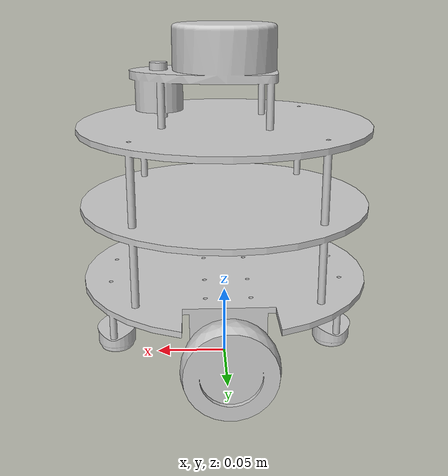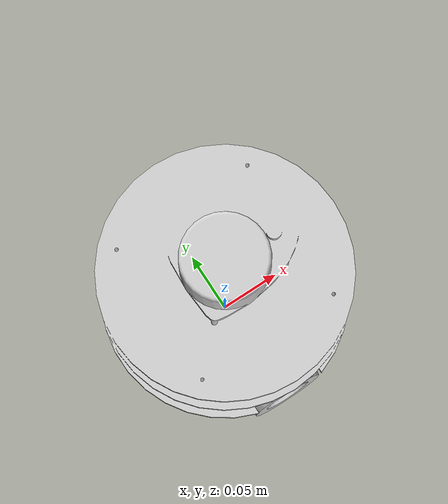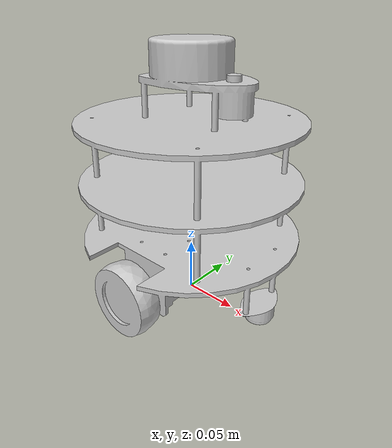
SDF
<?xml version="1.0" ?>
<sdf version="1.4">
    <model name="robot_thesis">
        <static>false</static>
        <link name="robot_base">
            <inertial>
                <pose>0 0 .1025 0 0 0</pose>
                <inertia>
                    <ixx>0.001</ixx>
                    <ixy>0.000</ixy>
                    <ixz>0.000</ixz>
                    <iyy>0.001</iyy>
                    <iyz>0.000</iyz>
                    <izz>0.001</izz>
                </inertia>
                <mass>1.0</mass>
            </inertial>
            <collision name="collision">
                <pose>0 0 .1025 0 0 0</pose>
                <geometry>
                    <box>
                        <size>.2 .2 .14</size>
                    </box>
                </geometry>
            </collision>
            <visual name="visual">
                <pose>0 0 .0625 0 0 -1.5707</pose>
                <geometry>
                    <mesh>
                        <uri>model://robot_thesis/meshs/dae/robot_base.dae</uri>
                    </mesh>
                </geometry>
            </visual>
            <collision name="caster_front_collision">
                <pose>-0.06 0 0.0325 0 0 0</pose>
                <geometry>
                    <sphere>
                        <radius>.0325</radius>
                    </sphere>
                </geometry>
                <surface>
                    <friction>
                        <ode>
                            <mu>0</mu>
                            <mu2>0</mu2>
                            <slip1>1.0</slip1>
                            <slip2>1.0</slip2>
                        </ode>
                    </friction>
                </surface>
            </collision>
            <collision name="caster_behind_collision">
                <pose>0.06 0 0.0325 0 0 0</pose>
                <geometry>
                    <sphere>
                        <radius>.0325</radius>
                    </sphere>
                </geometry>
                <surface>
                    <friction>
                        <ode>
                            <mu>0</mu>
                            <mu2>0</mu2>
                            <slip1>1.0</slip1>
                            <slip2>1.0</slip2>
                        </ode>
                    </friction>
                </surface>
            </collision>
        </link>
        <link name="robot_lidar">
            <inertial>
                <pose>-0.020 0 0.2 0 0 0</pose>
                <inertia>
                    <ixx>0.001</ixx>
                    <ixy>0.000</ixy>
                    <ixz>0.000</ixz>
                    <iyy>0.001</iyy>
                    <iyz>0.000</iyz>
                    <izz>0.001</izz>
                </inertia>
                <mass>0.125</mass>
            </inertial>
            <collision name="lidar_sensor_collision">
                <pose>-0.020 0 0.2 0 0 0</pose>
                <geometry>
                    <cylinder>
                        <radius>0.0508</radius>
                        <length>0.055</length>
                    </cylinder>
                </geometry>
            </collision>
            <sensor name="hls_lfcd_lds" type="ray">
                <always_on>1</always_on>
                <visualize>0</visualize>
                <pose>-0.032 0 0.171 0 0 0</pose>
                <update_rate>1800</update_rate>
                <ray>
                    <scan>
                        <horizontal>
                            <samples>360</samples>
                            <resolution>1.000000</resolution>
                            <min_angle>0.000000</min_angle>
                            <max_angle>6.280000</max_angle>
                        </horizontal>
                    </scan>
                    <range>
                        <min>0.120000</min>
                        <max>3.5</max>
                        <resolution>0.015000</resolution>
                    </range>
                    <noise>
                        <type>gaussian</type>
                        <mean>0.0</mean>
                        <stddev>0.01</stddev>
                    </noise>
                </ray>
            </sensor>
        </link>
        <link name="robot_leftwheel">
            <inertial>
                <pose>0 0.09 0.0325 -1.57 0 0</pose>
                <inertia>
                    <ixx>0.001</ixx>
                    <ixy>0.000</ixy>
                    <ixz>0.000</ixz>
                    <iyy>0.001</iyy>
                    <iyz>0.000</iyz>
                    <izz>0.001</izz>
                </inertia>
                <mass>0.1</mass>
            </inertial>
            <collision name="collision">
                <pose>0 0.09 0.0325 -1.57 0 0</pose>
                <geometry>
                    <cylinder>
                        <radius>.0325</radius>
                        <length>.026</length>
                    </cylinder>
                </geometry>
            </collision>
            <visual name="visual">
                <pose>0 0.09 0.0325 0 0  3.14  </pose>
                <geometry>
                    <mesh>
                        <uri>model://robot_thesis/meshs/dae/robot_wheel.dae</uri>
                    </mesh>
                </geometry>
            </visual>
        </link>
        <link name="robot_rightwheel">
            <inertial>
                <pose>0 -0.09 0.0325 -1.57 0 0</pose>
                <inertia>
                    <ixx>0.001</ixx>
                    <ixy>0.000</ixy>
                    <ixz>0.000</ixz>
                    <iyy>0.001</iyy>
                    <iyz>0.000</iyz>
                    <izz>0.001</izz>
                </inertia>
                <mass>0.1</mass>
            </inertial>
            <collision name="collision">
                <pose>0 -0.09 0.0325 -1.57 0 0</pose>
                <geometry>
                    <cylinder>
                        <radius>.0325</radius>
                        <length>.026</length>
                    </cylinder>
                </geometry>
            </collision>
            <visual name="visual">
                <pose>0 -0.09 0.0325 0 0 0</pose>
                <geometry>
                    <mesh>
                        <uri>model://robot_thesis/meshs/dae/robot_wheel.dae</uri>
                    </mesh>
                </geometry>
            </visual>
        </link>
        <joint name="left_wheel_hinge" type="revolute">
            <pose>0 0.09 0.0325 -1.57 0 0</pose>
            <child>robot_leftwheel</child>
            <parent>robot_base</parent>
            <axis>
                <xyz>0 1 0</xyz>
            </axis>
        </joint>
        <joint name="right_wheel_hinge" type="revolute">
            <pose>0 -0.09 0.0325 -1.57 0 0</pose>
            <child>robot_rightwheel</child>
            <parent>robot_base</parent>
            <axis>
                <xyz>0 1 0</xyz>
            </axis>
        </joint>
        <joint name="lidar_joint" type="fixed">
            <parent>robot_base</parent>
            <child>robot_lidar</child>
            <pose>0 0 0.2 0 0 0</pose>
            <axis>
                <xyz>0 0 1</xyz>
                <use_parent_model_frame>true</use_parent_model_frame>
            </axis>
        </joint>
    </model>
</sdf>
